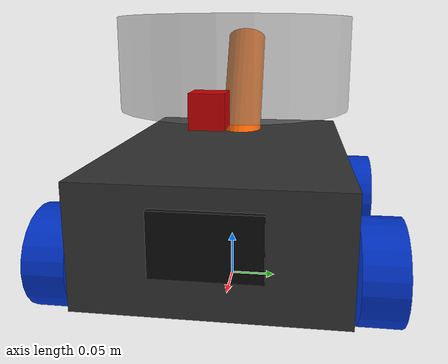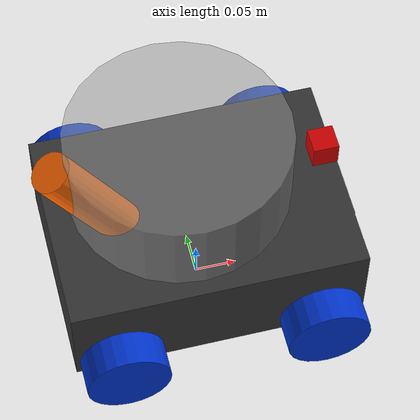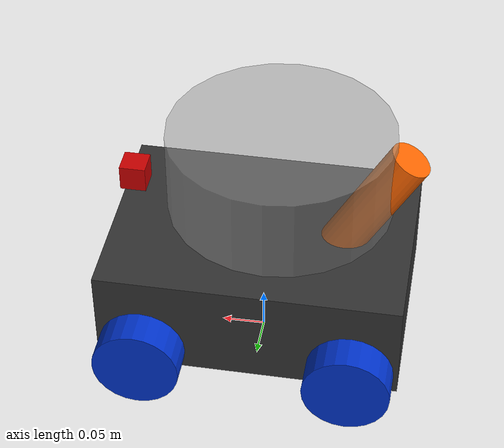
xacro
<?xml version="1.0"?>
<robot name="ping_pong_robot" xmlns:xacro="http://www.ros.org/wiki/xacro">

  <!-- Materials -->
  <material name="dark_grey"><color rgba="0.2 0.2 0.2 1.0"/></material>
  <material name="blue"><color rgba="0.0 0.2 0.8 1.0"/></material>
  <material name="black"><color rgba="0.05 0.05 0.05 1.0"/></material>
  <material name="red"><color rgba="0.8 0.0 0.0 1.0"/></material>
  <material name="net_grey"><color rgba="0.6 0.6 0.6 0.5"/></material>
  <material name="orange"><color rgba="1.0 0.4 0.0 1.0"/></material>

  <!-- Base Footprint -->
  <link name="base_footprint"/>

  <joint name="base_joint" type="fixed">
    <parent link="base_footprint"/>
    <child link="base_link"/>
    <origin xyz="0 0 0.1" rpy="0 0 0"/>
  </joint>

  <!-- Base Chassis -->
  <link name="base_link">
    <visual>
      <geometry><box size="0.35 0.25 0.12"/></geometry>
      <material name="dark_grey"/>
    </visual>
    <collision>
      <geometry><box size="0.35 0.25 0.12"/></geometry>
    </collision>
    <inertial>
      <mass value="3.0"/>
      <inertia ixx="0.019" ixy="0" ixz="0" iyy="0.034" iyz="0" izz="0.046"/>
    </inertial>
  </link>
  <gazebo reference="base_link"><material>Gazebo/DarkGrey</material></gazebo>

  <!-- Mecanum Wheels Macro -->
  <xacro:macro name="mecanum_wheel" params="prefix x_reflect y_reflect">
    <joint name="${prefix}_wheel_joint" type="continuous">
      <parent link="base_link"/>
      <child link="${prefix}_wheel_link"/>
      <origin xyz="${x_reflect * 0.12} ${y_reflect * 0.15} -0.03" rpy="-1.5708 0 0"/>
      <axis xyz="0 0 1"/>
    </joint>

    <link name="${prefix}_wheel_link">
      <visual>
        <geometry><cylinder radius="0.05" length="0.04"/></geometry>
        <material name="blue"/>
      </visual>
      <collision>
        <geometry><cylinder radius="0.05" length="0.04"/></geometry>
      </collision>
      <inertial>
        <mass value="0.2"/>
        <inertia ixx="0.00015" ixy="0" ixz="0" iyy="0.00015" iyz="0" izz="0.00025"/>
      </inertial>
    </link>
    <gazebo reference="${prefix}_wheel_link"><material>Gazebo/Blue</material></gazebo>
  </xacro:macro>

  <xacro:mecanum_wheel prefix="front_left"  x_reflect="1"  y_reflect="1" />
  <xacro:mecanum_wheel prefix="front_right" x_reflect="1"  y_reflect="-1" />
  <xacro:mecanum_wheel prefix="rear_left"   x_reflect="-1" y_reflect="1" />
  <xacro:mecanum_wheel prefix="rear_right"  x_reflect="-1" y_reflect="-1" />

  <!-- OLED Display Screen -->
  <joint name="screen_joint" type="fixed">
    <parent link="base_link"/>
    <child link="screen_link"/>
    <origin xyz="0.176 0 0.01" rpy="0 0 0"/>
  </joint>
  <link name="screen_link">
    <visual>
      <geometry><box size="0.01 0.10 0.06"/></geometry>
      <material name="black"/>
    </visual>
    <collision>
      <geometry><box size="0.01 0.10 0.06"/></geometry>
    </collision>
    <inertial>
      <mass value="0.05"/>
      <inertia ixx="0.00001" ixy="0" ixz="0" iyy="0.00001" iyz="0" izz="0.00001"/>
    </inertial>
  </link>
  <gazebo reference="screen_link"><material>Gazebo/Black</material></gazebo>

  <!-- Camera Link with Required Inertial Block -->
  <joint name="camera_joint" type="fixed">
    <parent link="base_link"/>
    <child link="camera_link"/>
    <origin xyz="0.15 0 0.12" rpy="0 0 0"/>
  </joint>

  <link name="camera_link">
    <visual>
      <geometry><box size="0.03 0.03 0.03"/></geometry>
      <material name="red"/>
    </visual>
    <collision>
      <geometry><box size="0.03 0.03 0.03"/></geometry>
    </collision>
    <inertial>
      <mass value="0.05"/>
      <inertia ixx="0.00001" ixy="0" ixz="0" iyy="0.00001" iyz="0" izz="0.00001"/>
    </inertial>
  </link>

  <!-- Gazebo ROS 2 Camera Plugin -->
  <gazebo reference="camera_link">
    <material>Gazebo/Red</material>
    <sensor type="camera" name="esp32_camera">
      <update_rate>30.0</update_rate>
      <camera name="head">
        <horizontal_fov>1.3962634</horizontal_fov>
        <image>
          <width>640</width>
          <height>480</height>
          <format>R8G8B8</format>
        </image>
        <clip>
          <near>0.02</near>
          <far>300</far>
        </clip>
      </camera>
      <plugin name="camera_controller" filename="libgazebo_ros_camera.so">
        <ros>
          <remapping>image_raw:=/target_detection_image</remapping>
        </ros>
        <camera_name>esp32_camera</camera_name>
        <frame_name>camera_link</frame_name>
      </plugin>
    </sensor>
  </gazebo>

  <!-- Separate Catching Basket -->
  <joint name="catch_net_joint" type="fixed">
    <parent link="base_link"/>
    <child link="catch_net_link"/>
    <origin xyz="-0.02 0 0.15" rpy="0 0 0"/>
  </joint>
  <link name="catch_net_link">
    <visual>
      <geometry><cylinder radius="0.13" length="0.10"/></geometry>
      <material name="net_grey"/>
    </visual>
    <collision>
      <geometry><cylinder radius="0.13" length="0.10"/></geometry>
    </collision>
    <inertial>
      <mass value="0.2"/>
      <inertia ixx="0.001" ixy="0" ixz="0" iyy="0.001" iyz="0" izz="0.001"/>
    </inertial>
  </link>
  <gazebo reference="catch_net_link">
    <material>Gazebo/GreyTransparent</material>
    <kp>1000.0</kp>
    <kd>100.0</kd>
  </gazebo>

  <!-- Separate Launcher Barrel Mechanism -->
  <joint name="launcher_joint" type="fixed">
    <parent link="base_link"/>
    <child link="launcher_link"/>
    <origin xyz="-0.12 0 0.10" rpy="0 -0.5236 0"/>
  </joint>
  <link name="launcher_link">
    <visual>
      <geometry><cylinder radius="0.025" length="0.18"/></geometry>
      <material name="orange"/>
    </visual>
    <collision>
      <geometry><cylinder radius="0.025" length="0.18"/></geometry>
    </collision>
    <inertial>
      <mass value="0.1"/>
      <inertia ixx="0.0005" ixy="0" ixz="0" iyy="0.0005" iyz="0" izz="0.0005"/>
    </inertial>
  </link>
  <gazebo reference="launcher_link"><material>Gazebo/Orange</material></gazebo>

  <!-- Planar Move Plugin for Mecanum Driving -->
  <gazebo>
    <plugin name="mecanum_controller" filename="libgazebo_ros_planar_move.so">
      <ros>
        <remapping>cmd_vel:=/cmd_vel</remapping>
        <remapping>odom:=/odom</remapping>
      </ros>
      <update_rate>50</update_rate>
      <robot_base_frame>base_footprint</robot_base_frame>
    </plugin>
  </gazebo>

</robot>
